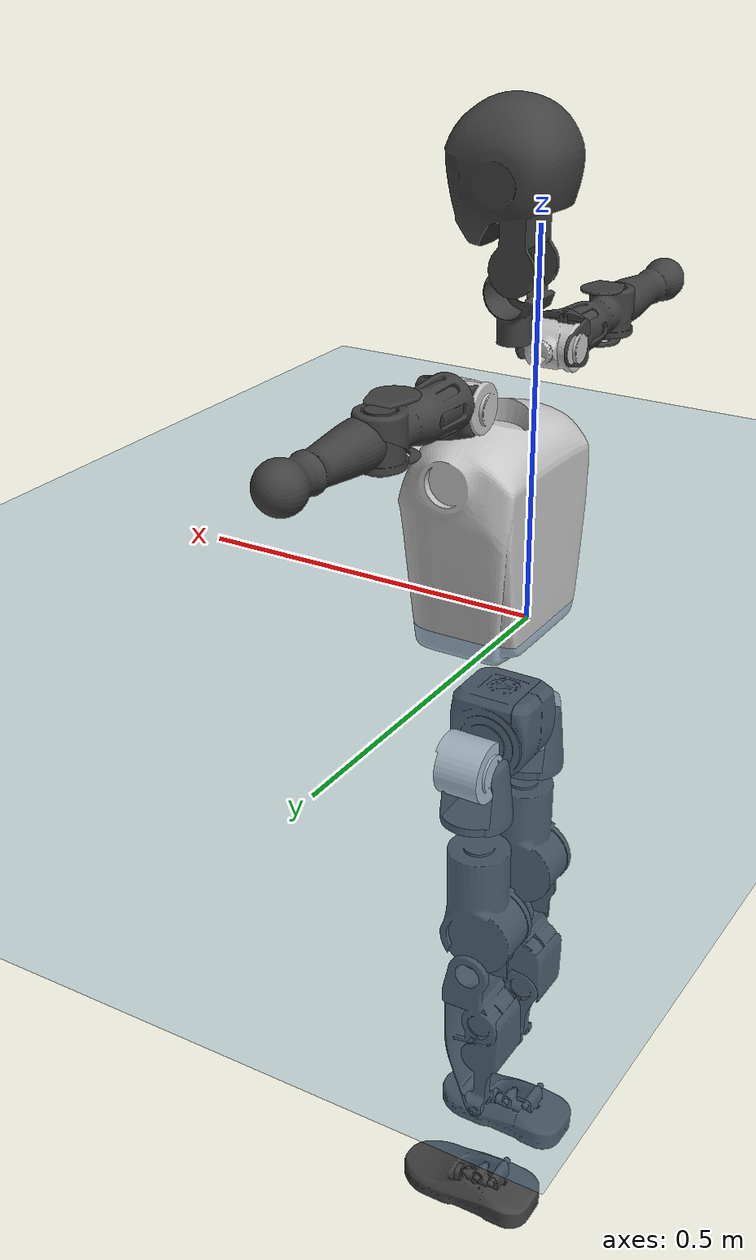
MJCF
<mujoco model="T1">
  <compiler angle="radian" assetdir="assets" balanceinertia="true" inertiafromgeom="false"/>

  <option timestep="0.005" density="1.2" viscosity="2e-05"/>

  <size nkey="1"/>

  <visual>
    <quality shadowsize="8192"/>
    <map shadowclip="0.5"/>
  </visual>

  <default>
    <default class="/">
      <joint armature="0.01" damping="0.01" frictionloss="0.1"/>
      <geom contype="0" conaffinity="0" group="1" solref="-1000 -80"/>
      <site size="0.01 0.005 0.005" group="5"/>
      <general forcelimited="true" biastype="affine" gainprm="25" biasprm="0 -25 -0.6"/>
      <default class="t1">
        <geom rgba="0.25 0.25 0.25 1"/>
        <default class="visual">
          <geom type="mesh" group="2"/>
        </default>
        <default class="collision">
          <geom group="3"/>
        </default>
        <default class="foot">
          <geom size="0.1115 0.05 0.015" type="box" condim="6" group="4" priority="1" solimp="0.015 1 0.015"/>
        </default>
        <default class="reward_collision_sphere">
          <geom group="5" rgba="1 0 0 1"/>
        </default>
      </default>
    </default>
  </default>

  <asset>
    <texture type="skybox" colorspace="auto" name="//unnamed_texture_0" builtin="gradient" rgb1="0.95 0.95 0.95" rgb2="0.95 0.95 0.95" width="100" height="600"/>
    <texture type="2d" colorspace="auto" name="texplane" builtin="checker" rgb1="0.345 0.575 0.748" rgb2="0.345 0.575 0.748" markrgb="1 1 1" width="512" height="512"/>
    <material name="MatPlane" class="/" texture="texplane" texuniform="true" texrepeat="2 2" specular="0.9"/>
    <mesh name="Trunk" class="/" file="Trunk.stl"/>
    <mesh name="H1" class="/" file="H1.stl"/>
    <mesh name="H2" class="/" file="H2.stl"/>
    <mesh name="AL1" class="/" file="AL1.stl"/>
    <mesh name="AL2" class="/" file="AL2.stl"/>
    <mesh name="AL3" class="/" file="AL3.stl"/>
    <mesh name="left_hand_link" class="/" file="left_hand_link.stl"/>
    <mesh name="AR1" class="/" file="AR1.stl"/>
    <mesh name="AR2" class="/" file="AR2.stl"/>
    <mesh name="AR3" class="/" file="AR3.stl"/>
    <mesh name="right_hand_link" class="/" file="right_hand_link.stl"/>
    <mesh name="Waist" class="/" file="Waist.stl"/>
    <mesh name="Hip_Pitch_Left" class="/" file="Hip_Pitch_Left.stl"/>
    <mesh name="Hip_Roll_Left" class="/" file="Hip_Roll_Left.stl"/>
    <mesh name="Hip_Yaw_Left" class="/" file="Hip_Yaw_Left.stl"/>
    <mesh name="Shank_Left" class="/" file="Shank_Left.stl"/>
    <mesh name="Ankle_Cross_Left" class="/" file="Ankle_Cross_Left.stl"/>
    <mesh name="left_foot_link" class="/" file="left_foot_link.stl"/>
    <mesh name="Hip_Pitch_Right" class="/" file="Hip_Pitch_Right.stl"/>
    <mesh name="Hip_Roll_Right" class="/" file="Hip_Roll_Right.stl"/>
    <mesh name="Hip_Yaw_Right" class="/" file="Hip_Yaw_Right.stl"/>
    <mesh name="Shank_Right" class="/" file="Shank_Right.stl"/>
    <mesh name="Ankle_Cross_Right" class="/" file="Ankle_Cross_Right.stl"/>
    <mesh name="right_foot_link" class="/" file="right_foot_link.stl"/>
  </asset>

  <worldbody>
    <geom name="floor" class="/" size="100 100 0.125" type="plane" group="0" material="MatPlane"/>
    <light name="toplight_shadow" class="/" pos="0 0 5" dir="0.0990148 0.0990148 -0.990148" type="directional" ambient="0.04 0.04 0.04" diffuse="0.55 0.55 0.55" specular="0.12 0.12 0.12"/>
    <light name="toplight_fill" class="/" pos="0 0 5" dir="0.0990148 0.0990148 -0.990148" type="directional" castshadow="false" ambient="0.04 0.04 0.04" diffuse="0.3 0.3 0.3" specular="0.08 0.08 0.08"/>
    <body name="trunk" childclass="t1" pos="0.000691838 0.000699628 -0.00762897" quat="0.999998 0.00141432 -0.000335417 0.00138484">
      <inertial pos="0.0350889 0.00698223 0.152801" quat="0.999962 0.00620404 -0.00608119 -0.000486348" mass="9.46206" diaginertia="0.00295345 0.0182153 0.390521"/>
      <joint name="//unnamed_joint_0" type="free" armature="0" damping="0" frictionloss="0"/>
      <geom name="//unnamed_geom_1" class="visual" rgba="0.76 0.76 0.76 1" mesh="Trunk"/>
      <geom name="//unnamed_geom_2" class="collision" size="0.0689568 0.0919424 0.137914" pos="0.0309878 0 0.179112" type="box"/>
      <geom name="//unnamed_geom_3" class="reward_collision_sphere" size="0.105734" pos="0.0309878 0 0.14926"/>
      <geom name="//unnamed_geom_4" class="reward_collision_sphere" size="0.0137914" pos="0.0309878 0.0636828 0"/>
      <geom name="//unnamed_geom_5" class="reward_collision_sphere" size="0.0137914" pos="0.0309878 -0.0636828 0"/>
      <geom name="//unnamed_geom_6" class="reward_collision_sphere" size="0.0137914" pos="0.0309878 0.0801654 0.268668"/>
      <geom name="//unnamed_geom_7" class="reward_collision_sphere" size="0.0137914" pos="0.0309878 -0.0801654 0.268668"/>
      <site name="imu" pos="0.0591102 -0.0611437 0.0579548" size="0.00919424"/>
      <camera name="track" pos="0 -1.49842 0" quat="0.707107 0.707107 0 0" mode="trackcom"/>
      <camera name="ego_camera" pos="0.0630085 0 0.626892" quat="-0.5 -0.5 0.5 0.5"/>
      <body name="H1" pos="0.0313083 0.000732431 0.365731" quat="0.999984 -0.00074338 -0.000267789 -0.00568935">
        <inertial pos="-0.00134415 -0.00171156 0.0820367" quat="0.76109 -0.0115403 0.00269005 0.648538" mass="0.252333" diaginertia="8.59509e-06 4.41528e-05 0.000951527"/>
        <joint name="AAHead_yaw" pos="0 0 0" axis="-0.00587202 0.0313872 0.99949" stiffness="0.00775609" range="-1.57885 1.54305" armature="0.00317607" damping="0.0474814" frictionloss="0.098123"/>
        <geom name="//unnamed_geom_8" class="visual" mesh="H1"/>
        <body name="H2" pos="-0.0135691 0.00655966 0.0928325" quat="0.999996 0.00147427 -0.002049 -0.00123232">
          <inertial pos="0.001832 -0.000588143 0.146536" quat="0.988036 0.103737 -0.0781938 -0.0831273" mass="0.514639" diaginertia="7.72166e-05 0.000457635 0.0119845"/>
          <joint name="Head_pitch" pos="0 0 0" axis="-0.0374814 -0.99921 -0.0132484" range="-1.19285 0.483703" armature="0.00771922" damping="0.0281626" frictionloss="0.0941367"/>
          <geom name="//unnamed_geom_9" class="visual" mesh="H2"/>
          <geom name="//unnamed_geom_10" class="collision" size="0.0735539" pos="0.00516463 0 0.164186"/>
          <geom name="//unnamed_geom_11" class="reward_collision_sphere" size="0.0827482" pos="0.0103293 0 0.14926"/>
        </body>
      </body>
      <body name="AL1" pos="0.0327363 0.0769227 0.32394" quat="0.999991 0.00383958 -0.00158152 -0.000676991">
        <inertial pos="-0.0013766 0.0238169 3.1416e-05" quat="0.507719 0.497019 -0.500641 0.494522" mass="0.412171" diaginertia="4.56754e-05 0.00031901 0.0022716"/>
        <joint name="Left_Shoulder_Pitch" pos="0 0 0" axis="0.00231397 0.999967 0.00773951" stiffness="0.0199922" range="-3.39862 1.22472" armature="0.010471" damping="0.0111532" frictionloss="0.124755"/>
        <geom name="//unnamed_geom_12" class="visual" rgba="0.76 0.76 0.76 1" mesh="AL1"/>
        <body name="AL2" pos="0.00948842 0.0295741 0.000932712" quat="1 -0.000169119 7.90287e-05 -0.000196365">
          <inertial pos="0.00307803 0.0309234 -0.0105352" quat="0.489427 0.510333 -0.485609 0.514008" mass="0.097732" diaginertia="1.30815e-05 8.37303e-05 0.00109564"/>
          <joint name="Left_Shoulder_Roll" pos="0 0 0" axis="-0.999564 -0.0269719 -0.0119867" range="-1.80468 1.51054" armature="0.0140554" damping="0.0401891" frictionloss="0.0941691"/>
          <geom name="//unnamed_geom_13" class="visual" mesh="AL2"/>
          <body name="AL3" pos="-0.00726382 0.0443952 0.0101505" quat="1 0.000215855 0.000119138 -0.0001729">
            <inertial pos="-0.00735824 0.0643634 0.000530042" quat="0.692858 0.720784 -0.0201021 0.00375445" mass="0.835484" diaginertia="0.000543926 0.00286564 0.00556232"/>
            <joint name="Left_Elbow_Pitch" pos="0 0 0" axis="-0.0296096 -0.997917 -0.0573076" stiffness="0.0619979" range="-2.50699 2.08171" armature="0.0152712" damping="0.0747253" frictionloss="0.129447"/>
            <geom name="//unnamed_geom_14" class="visual" mesh="AL3"/>
            <geom name="//unnamed_geom_15" class="collision" size="0.0275827 0.0689568" pos="0 0.0374605 0" quat="0.707105 0.707108 0 0" type="cylinder"/>
            <geom name="//unnamed_geom_16" class="reward_collision_sphere" size="0.0330993"/>
            <body name="left_hand_link" pos="0.00934606 0.101505 -0.00079445" quat="0.999997 -0.000775367 -0.00242749 -0.000568205">
              <inertial pos="0.000913478 0.0811258 -0.00531614" quat="0.706951 0.70726 0.000929201 0.00126427" mass="0.255741" diaginertia="0.000262403 0.00166993 0.0016287"/>
              <joint name="Left_Elbow_Yaw" pos="0 0 0" axis="-0.0146057 -0.0344816 0.999299" stiffness="0.0126598" range="-2.33247 0.00716124" armature="0.00328808" damping="0.00503972" frictionloss="0.122066"/>
              <geom name="//unnamed_geom_17" class="visual" mesh="left_hand_link"/>
              <geom name="//unnamed_geom_18" class="collision" size="0.0275827 0.0804496" pos="0 0.0973972 0" quat="0.707105 0.707108 0 0" type="cylinder"/>
              <geom name="//unnamed_geom_19" class="reward_collision_sphere" size="0.0459712"/>
              <geom name="//unnamed_geom_20" class="reward_collision_sphere" size="0.0321799" pos="0 0.082413 0"/>
              <geom name="//unnamed_geom_21" class="reward_collision_sphere" size="0.0321799" pos="0 0.16108 0"/>
            </body>
          </body>
        </body>
      </body>
      <body name="AR1" pos="0.0394648 -0.0857 0.328122" quat="1 -7.67163e-06 0.000447653 -6.52649e-05">
        <inertial pos="0.0109812 -0.0380489 -0.00820481" quat="0.539243 0.457166 -0.476496 0.522655" mass="0.386437" diaginertia="5.43753e-05 0.00033092 0.00186773"/>
        <joint name="Right_Shoulder_Pitch" pos="0 0 0" axis="0.0103996 -0.999943 0.00224314" range="-1.23816 3.33265" armature="0.0100225" damping="0" frictionloss="0.129031"/>
        <geom name="//unnamed_geom_22" class="visual" rgba="0.76 0.76 0.76 1" mesh="AR1"/>
        <body name="AR2" pos="0.0026893 -0.0315061 0.00181548" quat="0.999998 -0.00133302 0.000409317 -0.0010734">
          <inertial pos="-0.000997852 -0.0291912 -0.00514669" quat="0.512516 0.48622 -0.512477 0.488144" mass="0.124543" diaginertia="1.48689e-05 7.1038e-05 0.00121093"/>
          <joint name="Right_Shoulder_Roll" pos="0 0 0" axis="-0.99977 0.0134837 0.016652" stiffness="0.00133954" range="-1.85649 1.32545" armature="0.0127673" damping="0" frictionloss="0.0872865"/>
          <geom name="//unnamed_geom_23" class="visual" mesh="AR2"/>
          <body name="AR3" pos="0.000140898 -0.0443813 -0.000157974" quat="1 -0.00031954 -0.000115585 0.000630625">
            <inertial pos="-0.00179768 -0.052409 -0.00919305" quat="0.720356 0.692587 0.0334233 -0.0171316" mass="0.784008" diaginertia="0.000447901 0.0033992 0.00415554"/>
            <joint name="Right_Elbow_Pitch" pos="0 0 0" axis="0.0180597 0.999663 0.0186604" range="-2.40651 2.43827" armature="0.00861365" damping="0" frictionloss="0.0926588"/>
            <geom name="//unnamed_geom_24" class="visual" mesh="AR3"/>
            <geom name="//unnamed_geom_25" class="collision" size="0.0275827 0.0689568" pos="0 -0.0374605 0" quat="0.707105 0.707108 0 0" type="cylinder"/>
            <geom name="//unnamed_geom_26" class="reward_collision_sphere" size="0.0330993"/>
            <body name="right_hand_link" pos="0.00045197 -0.111924 0.00211839" quat="0.999997 0.002464 -0.000292776 3.17305e-06">
              <inertial pos="0.0013656 -0.0811305 0.0103149" quat="0.706344 0.707869 0.000202173 0.000129513" mass="0.261889" diaginertia="0.000286061 0.00188351 0.0017229"/>
              <joint name="Right_Elbow_Yaw" pos="0 0 0" axis="-0.00168805 -0.000637617 0.999998" range="-0.0151735 2.47163" armature="0.00965384" damping="0.021319" frictionloss="0.0566465"/>
              <geom name="//unnamed_geom_27" class="visual" mesh="right_hand_link"/>
              <geom name="//unnamed_geom_28" class="collision" size="0.0275827 0.0804496" pos="0 -0.0973972 0" quat="0.707105 0.707108 0 0" type="cylinder"/>
              <geom name="//unnamed_geom_29" class="reward_collision_sphere" size="0.0459712"/>
              <geom name="//unnamed_geom_30" class="reward_collision_sphere" size="0.0321799" pos="0 -0.082413 0"/>
              <geom name="//unnamed_geom_31" class="reward_collision_sphere" size="0.0321799" pos="0 -0.16108 0"/>
            </body>
          </body>
        </body>
      </body>
      <body name="Waist" pos="0.031164 -0.000893641 -0.170329" quat="0.999995 -3.66518e-05 -0.00292286 0.001474">
        <inertial pos="0.0152015 -0.00835108 0.0109896" quat="0.983725 0.000274329 -0.17967 0.00217496" mass="2.17833" diaginertia="0.000238929 0.00134945 0.034189"/>
        <joint name="Waist" pos="0 0 0" axis="0.0559144 -0.0232965 0.998164" range="-1.64127 1.64619" armature="0.0117032" damping="0" frictionloss="0.0854504"/>
        <geom name="//unnamed_geom_32" class="visual" mesh="Waist"/>
        <body name="Hip_Pitch_Left" pos="0.0110315 0.0727478 -0.0081355" quat="0.999976 -0.00660026 -0.00201643 -0.000380969">
          <inertial pos="0.00957837 -0.0173998 -0.0287051" quat="0.975276 0.220759 0.0100291 0.000790295" mass="0.854193" diaginertia="7.57648e-05 0.000409573 0.00910826"/>
          <joint name="Left_Hip_Pitch" pos="0 0 0" axis="0.0211648 0.999701 -0.0122637" range="-1.75468 1.58314" armature="0.0137331" damping="4.29069e-05" frictionloss="0.0351068"/>
          <geom name="//unnamed_geom_33" class="visual" rgba="0.76 0.76 0.76 1" mesh="Hip_Pitch_Left"/>
          <body name="Hip_Roll_Left" pos="-0.0135055 0.00806558 -0.0162652" quat="0.999977 0.000910201 0.00640458 -0.00214179">
            <inertial pos="-0.00658347 0.00486781 -0.0686555" quat="0.707316 -0.00629581 -0.00647802 0.706839" mass="0.315005" diaginertia="6.29124e-05 0.00034669 0.00361744"/>
            <joint name="Left_Hip_Roll" pos="0 0 0" axis="-0.999949 -0.00278903 0.0097151" range="-1.58501 0.219577" armature="0.00590149" damping="0" frictionloss="0.0921636"/>
            <geom name="//unnamed_geom_34" class="visual" mesh="Hip_Roll_Left"/>
            <geom name="//unnamed_geom_35" class="reward_collision_sphere" size="0.0505683"/>
            <body name="Hip_Yaw_Left" pos="-0.00563431 -0.0035133 -0.128369" quat="1 -0.000422959 -0.000314819 0.000785231">
              <inertial pos="-0.0058607 -0.0135456 -0.14461" quat="0.689135 -0.030888 -0.0223482 0.723629" mass="1.70343" diaginertia="0.000961896 0.00607477 0.0193636"/>
              <joint name="Left_Hip_Yaw" pos="0 0 0" axis="-0.0166599 0.00900315 -0.999821" range="-1.04801 0.97355" armature="0.00957047" damping="0.00870213" frictionloss="0.0572562"/>
              <geom name="//unnamed_geom_36" class="visual" mesh="Hip_Yaw_Left"/>
              <geom name="//unnamed_geom_37" class="collision" size="0.0459712 0.0735539" type="cylinder"/>
              <body name="Shank_Left" pos="-0.00876326 0.00475904 -0.193105" quat="0.999989 0.00119253 0.00447428 0.000666165">
                <inertial pos="-0.00164689 0.00815974 -0.190217" quat="0.998237 0.0222311 0.0241419 0.0494554" mass="1.40614" diaginertia="0.00128853 0.00771715 0.0140959"/>
                <joint name="Left_Knee_Pitch" pos="0 0 0" axis="0.00712317 0.999858 0.0152532" range="-0.0353204 2.54251" armature="0.00478415" damping="0.0298172" frictionloss="0.0902135"/>
                <geom name="//unnamed_geom_38" class="visual" mesh="Shank_Left"/>
                <geom name="//unnamed_geom_39" class="collision" size="0.0459712 0.0689568" pos="0 0 -0.179112" type="cylinder"/>
                <geom name="//unnamed_geom_40" class="reward_collision_sphere" size="0.0597626"/>
                <body name="Ankle_Cross_Left" pos="-0.00619879 0.00915061 -0.421196" quat="0.999997 0.00176959 -0.0006009 -0.00156534">
                  <inertial pos="-0.000811565 0.0016762 -0.0154604" quat="0.412198 0.559745 0.542647 0.4715" mass="0.0597148" diaginertia="9.15543e-07 5.83597e-06 8.10203e-05"/>
                  <joint name="Left_Ankle_Pitch" pos="0 0 0" axis="0.00813035 0.999966 0.00157013" range="-0.628461 0.109871" armature="0.00603522" damping="0.0727836" frictionloss="0.0604712"/>
                  <geom name="//unnamed_geom_41" class="visual" mesh="Ankle_Cross_Left"/>
                  <body name="left_foot_link" pos="0.0063127 0.00630926 -0.00736341" quat="0.999982 0.00222125 -0.00433513 0.00361231">
                    <inertial pos="0.00222553 -0.00181067 -0.0132185" quat="-0.013087 0.590105 -0.0211083 0.806944" mass="0.447243" diaginertia="8.69954e-05 0.000470348 0.0111515"/>
                    <joint name="Left_Ankle_Roll" pos="0 0 0" axis="-0.998692 -0.0499662 -0.0108148" range="-0.433111 0.19101" armature="0.00865293" damping="0.00750161" frictionloss="0.0276232"/>
                    <geom name="//unnamed_geom_42" class="visual" mesh="left_foot_link"/>
                    <geom name="left_foot" class="foot" size="0.097406 0.0647367 0.00659215" pos="0.00516463 0 -0.022389"/>
                    <geom name="//unnamed_geom_44" class="reward_collision_sphere" size="0.0478101" pos="0.00516463 0 -0.022389"/>
                    <geom name="//unnamed_geom_45" class="reward_collision_sphere" size="0.0275827" pos="0.049064 -0.0172318 -0.022389"/>
                    <geom name="//unnamed_geom_46" class="reward_collision_sphere" size="0.0275827" pos="-0.0361524 -0.0172318 -0.022389"/>
                    <site name="left_foot" class="foot" pos="0.00516463 0 -0.022389" size="0.00919424"/>
                  </body>
                </body>
              </body>
            </body>
          </body>
        </body>
        <body name="Hip_Pitch_Right" pos="0.00281426 -0.0780234 0.000823513" quat="1 1.132e-05 0.000313542 -0.000334861">
          <inertial pos="0.00498462 0.00594266 -0.0214945" quat="0.964433 -0.259838 -0.0219362 -0.0432655" mass="0.974127" diaginertia="7.72267e-05 0.000371886 0.0112694"/>
          <joint name="Right_Hip_Pitch" pos="0 0 0" axis="0.0027745 -0.999939 0.0106619" range="-1.56288 1.92448" armature="0.00665959" damping="0.00825212" frictionloss="0.0986668"/>
          <geom name="//unnamed_geom_47" class="visual" rgba="0.76 0.76 0.76 1" mesh="Hip_Pitch_Right"/>
          <body name="Hip_Roll_Right" pos="-0.00694627 0.00358951 -0.0185724" quat="1 -0.000147633 -0.000602847 -0.000351529">
            <inertial pos="0.003539 -0.00763064 -0.0801105" quat="0.728381 -0.0309304 -0.0223726 0.684108" mass="0.324231" diaginertia="6.29088e-05 0.00035079 0.0041887"/>
            <joint name="Right_Hip_Roll" pos="0 0 0" axis="-0.999928 0.0109258 -0.00496799" stiffness="0.0689237" range="-0.172446 1.54067" armature="0.0124867" damping="0.00763103" frictionloss="0.0987759"/>
            <geom name="//unnamed_geom_48" class="visual" mesh="Hip_Roll_Right"/>
            <geom name="//unnamed_geom_49" class="reward_collision_sphere" size="0.0505683"/>
            <body name="Hip_Yaw_Right" pos="0.0104676 -0.0132294 -0.120631" quat="1 -0.000403989 0.000583834 -5.30651e-05">
              <inertial pos="0.00527818 0.000400505 -0.120519" quat="0.728831 0.0106135 -0.0395939 0.683466" mass="1.44527" diaginertia="0.000938188 0.00582446 0.018712"/>
              <joint name="Right_Hip_Yaw" pos="0 0 0" axis="-0.00288006 0.00545172 -0.999981" stiffness="0.0163718" range="-1.21261 1.13128" armature="0.00917088" damping="0.0172155" frictionloss="0.0888954"/>
              <geom name="//unnamed_geom_50" class="visual" mesh="Hip_Yaw_Right"/>
              <geom name="//unnamed_geom_51" class="collision" size="0.0459712 0.0735539" type="cylinder"/>
              <body name="Shank_Right" pos="-0.00917093 -0.00872503 -0.208417" quat="0.999999 0.00119007 0.000156127 0.000228765">
                <inertial pos="-0.0169762 -0.0010388 -0.178118" quat="0.996951 0.0111746 -0.0108677 -0.0764553" mass="1.71814" diaginertia="0.00144165 0.00806057 0.0161547"/>
                <joint name="Right_Knee_Pitch" pos="0 0 0" axis="0.0302181 -0.998949 0.034456" stiffness="0.000492122" range="-2.35438 -0.0436586" armature="0.00624985" damping="0.0372438" frictionloss="0.0501485"/>
                <geom name="//unnamed_geom_52" class="visual" mesh="Shank_Right"/>
                <geom name="//unnamed_geom_53" class="collision" size="0.0459712 0.0689568" pos="0 0 -0.179112" type="cylinder"/>
                <geom name="//unnamed_geom_54" class="reward_collision_sphere" size="0.0597626"/>
                <body name="Ankle_Cross_Right" pos="0.00608862 0.0124058 -0.414752" quat="0.999983 0.00296426 0.0011858 -0.00493013">
                  <inertial pos="-0.000234308 0.0019378 -0.0110557" quat="0.448141 0.54811 0.550129 0.442835" mass="0.0564503" diaginertia="1.18994e-06 5.85004e-06 8.65809e-05"/>
                  <joint name="Right_Ankle_Pitch" pos="0 0 0" axis="0.000773998 -0.999759 -0.0219503" range="-0.239528 0.620016" armature="0.00904145" damping="0" frictionloss="0.0903684"/>
                  <geom name="//unnamed_geom_55" class="visual" mesh="Ankle_Cross_Right"/>
                  <body name="right_foot_link" pos="-1.30921e-05 -0.00196948 -0.01061" quat="0.999989 0.000626858 -0.00419001 -0.00191113">
                    <inertial pos="0.00900406 0.00170116 -0.0143144" quat="-0.0107088 0.630174 0.00433706 0.776368" mass="0.529304" diaginertia="0.000113875 0.000617367 0.0169857"/>
                    <joint name="Right_Ankle_Roll" pos="0 0 0" axis="-0.999977 -0.000308475 -0.00684032" range="-0.57196 0.553418" armature="0.0077806" damping="0.00654598" frictionloss="0.0817283"/>
                    <geom name="//unnamed_geom_56" class="visual" mesh="right_foot_link"/>
                    <geom name="right_foot" class="foot" size="0.101806 0.0610134 0.013585" pos="0.00516463 0 -0.022389"/>
                    <geom name="//unnamed_geom_58" class="reward_collision_sphere" size="0.036777"/>
                    <geom name="//unnamed_geom_59" class="reward_collision_sphere" size="0.0275827" pos="0.00516463 0 -0.022389"/>
                    <geom name="//unnamed_geom_60" class="reward_collision_sphere" size="0.0275827" pos="0.049064 0.0172318 -0.022389"/>
                    <geom name="//unnamed_geom_61" class="reward_collision_sphere" size="0.0275827" pos="-0.0361524 0.0172318 -0.022389"/>
                    <site name="right_foot" class="foot" pos="0.00516463 0 -0.022389" size="0.00919424"/>
                  </body>
                </body>
              </body>
            </body>
          </body>
        </body>
      </body>
    </body>
  </worldbody>

  <contact>
    <pair class="/" geom1="floor" geom2="left_foot" name="//unnamed_contact_0"/>
    <pair class="/" geom1="floor" geom2="right_foot" name="//unnamed_contact_1"/>
  </contact>

  <actuator>
    <general name="AAHead_yaw" class="/" joint="AAHead_yaw" forcerange="-7.2578 7.2578" gainprm="29.8336" biasprm="0 -29.8336 -0.617117"/>
    <general name="Head_pitch" class="/" joint="Head_pitch" forcerange="-5.86589 5.86589" gainprm="29.8336" biasprm="0 -29.8336 -0.617117"/>
    <general name="Left_Shoulder_Pitch" class="/" joint="Left_Shoulder_Pitch" forcerange="-16.1693 16.1693" gainprm="29.8336" biasprm="0 -29.8336 -0.617117"/>
    <general name="Left_Shoulder_Roll" class="/" joint="Left_Shoulder_Roll" forcerange="-20.4072 20.4072" gainprm="29.8336" biasprm="0 -29.8336 -0.617117"/>
    <general name="Left_Elbow_Pitch" class="/" joint="Left_Elbow_Pitch" forcerange="-24.2455 24.2455" gainprm="29.8336" biasprm="0 -29.8336 -0.617117"/>
    <general name="Left_Elbow_Yaw" class="/" joint="Left_Elbow_Yaw" forcerange="-9.92066 9.92066" gainprm="29.8336" biasprm="0 -29.8336 -0.617117"/>
    <general name="Right_Shoulder_Pitch" class="/" joint="Right_Shoulder_Pitch" forcerange="-9.5951 9.5951" gainprm="29.8336" biasprm="0 -29.8336 -0.617117"/>
    <general name="Right_Shoulder_Roll" class="/" joint="Right_Shoulder_Roll" forcerange="-19.3456 19.3456" gainprm="29.8336" biasprm="0 -29.8336 -0.617117"/>
    <general name="Right_Elbow_Pitch" class="/" joint="Right_Elbow_Pitch" forcerange="-16.413 16.413" gainprm="29.8336" biasprm="0 -29.8336 -0.617117"/>
    <general name="Right_Elbow_Yaw" class="/" joint="Right_Elbow_Yaw" forcerange="-17.3668 17.3668" gainprm="29.8336" biasprm="0 -29.8336 -0.617117"/>
    <general name="Waist" class="/" joint="Waist" forcerange="-27.5338 27.5338" gainprm="29.8336" biasprm="0 -29.8336 -0.617117"/>
    <general name="Left_Hip_Pitch" class="/" joint="Left_Hip_Pitch" forcerange="-48.4306 48.4306" gainprm="29.8336" biasprm="0 -29.8336 -0.617117"/>
    <general name="Left_Hip_Roll" class="/" joint="Left_Hip_Roll" forcerange="-15.9258 15.9258" gainprm="29.8336" biasprm="0 -29.8336 -0.617117"/>
    <general name="Left_Hip_Yaw" class="/" joint="Left_Hip_Yaw" forcerange="-40.5425 40.5425" gainprm="29.8336" biasprm="0 -29.8336 -0.617117"/>
    <general name="Left_Knee_Pitch" class="/" joint="Left_Knee_Pitch" forcerange="-80.7735 80.7735" gainprm="29.8336" biasprm="0 -29.8336 -0.617117"/>
    <general name="Left_Ankle_Pitch" class="/" joint="Left_Ankle_Pitch" forcerange="-19.3621 19.3621" gainprm="29.8336" biasprm="0 -29.8336 -0.617117"/>
    <general name="Left_Ankle_Roll" class="/" joint="Left_Ankle_Roll" forcerange="-13.7707 13.7707" gainprm="29.8336" biasprm="0 -29.8336 -0.617117"/>
    <general name="Right_Hip_Pitch" class="/" joint="Right_Hip_Pitch" forcerange="-36.2896 36.2896" gainprm="29.8336" biasprm="0 -29.8336 -0.617117"/>
    <general name="Right_Hip_Roll" class="/" joint="Right_Hip_Roll" forcerange="-26.3636 26.3636" gainprm="29.8336" biasprm="0 -29.8336 -0.617117"/>
    <general name="Right_Hip_Yaw" class="/" joint="Right_Hip_Yaw" forcerange="-21.4789 21.4789" gainprm="29.8336" biasprm="0 -29.8336 -0.617117"/>
    <general name="Right_Knee_Pitch" class="/" joint="Right_Knee_Pitch" forcerange="-52.6415 52.6415" gainprm="29.8336" biasprm="0 -29.8336 -0.617117"/>
    <general name="Right_Ankle_Pitch" class="/" joint="Right_Ankle_Pitch" forcerange="-25.451 25.451" gainprm="29.8336" biasprm="0 -29.8336 -0.617117"/>
    <general name="Right_Ankle_Roll" class="/" joint="Right_Ankle_Roll" forcerange="-13.8904 13.8904" gainprm="29.8336" biasprm="0 -29.8336 -0.617117"/>
  </actuator>

  <sensor>
    <gyro site="imu" name="imu_angular_velocity"/>
    <velocimeter site="imu" name="imu_linear_velocity"/>
    <framelinvel objtype="site" objname="left_foot" name="left_foot_global_linear_velocity"/>
    <framelinvel objtype="site" objname="right_foot" name="right_foot_global_linear_velocity"/>
  </sensor>

  <keyframe>
    <key name="home" qpos="0 0 0.6385 1 0 0 0 0 0 0 1.4 0 -0.4 0 -1.4 0 0.4 0 -0.4 0 0 0.8 -0.4 0 0.4 0 0 -0.8 0.4 0"/>
  </keyframe>
</mujoco>
